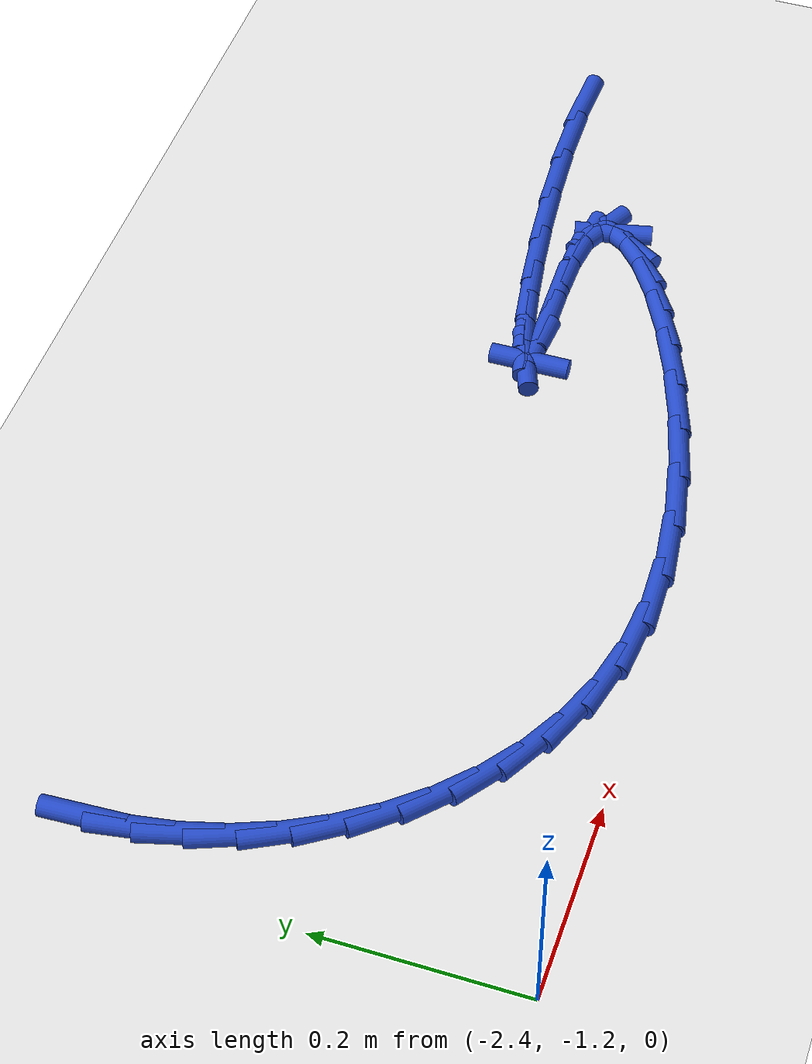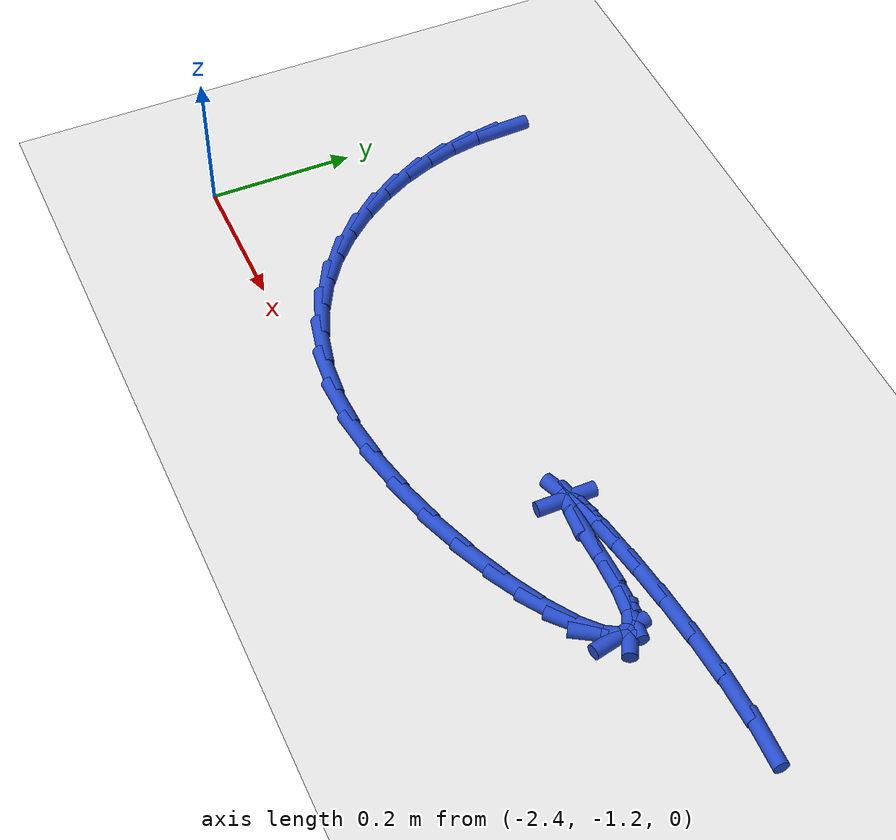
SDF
<sdf version="1.6">
 <world name="default">
  <model name="ground_plane">
   <static>1</static>
   <link name="link">
    <collision name="collision">
     <geometry><plane><normal>0 0 1</normal><size>100 100</size></plane></geometry>
     <surface><friction><ode><mu>100</mu><mu2>50</mu2></ode></friction></surface>
    </collision>
    <visual name="visual">
     <cast_shadows>0</cast_shadows>
     <geometry><plane><normal>0 0 1</normal><size>100 100</size></plane></geometry>
     <material>
      <script><uri>file://media/materials/scripts/gazebo.material</uri><name>Gazebo/WhiteGlow</name></script>
     </material>
    </visual>
   </link>
  </model>
  <model name="line">
   <link name="link_140">
    <pose>-2.354982550051445 -0.7819598261281329 0.01 0 1.57 -1.5226373907686408</pose>
    <collision name="collision">
     <geometry><cylinder><radius>0.01</radius><length>0.08</length></cylinder></geometry>
    </collision>
    <visual name="visual">
     <material>
      <script><name>Gazebo/Blue</name><uri>file://media/materials/scripts/gazebo.material</uri></script>
     </material>
     <geometry><cylinder><radius>0.01</radius><length>0.08</length></cylinder></geometry>
    </visual>
   </link>
   <link name="link_141">
    <pose>-2.352985949779934 -0.8233863325457929 0.01 0 1.57 -1.4061057183950574</pose>
    <collision name="collision">
     <geometry><cylinder><radius>0.01</radius><length>0.08</length></cylinder></geometry>
    </collision>
    <visual name="visual">
     <material>
      <script><name>Gazebo/Blue</name><uri>file://media/materials/scripts/gazebo.material</uri></script>
     </material>
     <geometry><cylinder><radius>0.01</radius><length>0.08</length></cylinder></geometry>
    </visual>
   </link>
   <link name="link_142">
    <pose>-2.345979042490689 -0.8655468605257998 0.01 0 1.57 -1.2954565174454702</pose>
    <collision name="collision">
     <geometry><cylinder><radius>0.01</radius><length>0.08</length></cylinder></geometry>
    </collision>
    <visual name="visual">
     <material>
      <script><name>Gazebo/Blue</name><uri>file://media/materials/scripts/gazebo.material</uri></script>
     </material>
     <geometry><cylinder><radius>0.01</radius><length>0.08</length></cylinder></geometry>
    </visual>
   </link>
   <link name="link_143">
    <pose>-2.3340541043550163 -0.9077567132680743 0.01 0 1.57 -1.1877855295326203</pose>
    <collision name="collision">
     <geometry><cylinder><radius>0.01</radius><length>0.08</length></cylinder></geometry>
    </collision>
    <visual name="visual">
     <material>
      <script><name>Gazebo/Blue</name><uri>file://media/materials/scripts/gazebo.material</uri></script>
     </material>
     <geometry><cylinder><radius>0.01</radius><length>0.08</length></cylinder></geometry>
    </visual>
   </link>
   <link name="link_144">
    <pose>-2.317303411544225 -0.9493311939725375 0.01 0 1.57 -1.0805460034518333</pose>
    <collision name="collision">
     <geometry><cylinder><radius>0.01</radius><length>0.08</length></cylinder></geometry>
    </collision>
    <visual name="visual">
     <material>
      <script><name>Gazebo/Blue</name><uri>file://media/materials/scripts/gazebo.material</uri></script>
     </material>
     <geometry><cylinder><radius>0.01</radius><length>0.08</length></cylinder></geometry>
    </visual>
   </link>
   <link name="link_145">
    <pose>-2.2958192402296227 -0.9895856058391107 0.01 0 1.57 -0.9715556813195505</pose>
    <collision name="collision">
     <geometry><cylinder><radius>0.01</radius><length>0.08</length></cylinder></geometry>
    </collision>
    <visual name="visual">
     <material>
      <script><name>Gazebo/Blue</name><uri>file://media/materials/scripts/gazebo.material</uri></script>
     </material>
     <geometry><cylinder><radius>0.01</radius><length>0.08</length></cylinder></geometry>
    </visual>
   </link>
   <link name="link_146">
    <pose>-2.2696938665825193 -1.0278352520677152 0.01 0 1.57 -0.8590312676838973</pose>
    <collision name="collision">
     <geometry><cylinder><radius>0.01</radius><length>0.08</length></cylinder></geometry>
    </collision>
    <visual name="visual">
     <material>
      <script><name>Gazebo/Blue</name><uri>file://media/materials/scripts/gazebo.material</uri></script>
     </material>
     <geometry><cylinder><radius>0.01</radius><length>0.08</length></cylinder></geometry>
    </visual>
   </link>
   <link name="link_147">
    <pose>-2.2390195667742203 -1.0633954358582722 0.01 0 1.57 -0.741678897190574</pose>
    <collision name="collision">
     <geometry><cylinder><radius>0.01</radius><length>0.08</length></cylinder></geometry>
    </collision>
    <visual name="visual">
     <material>
      <script><name>Gazebo/Blue</name><uri>file://media/materials/scripts/gazebo.material</uri></script>
     </material>
     <geometry><cylinder><radius>0.01</radius><length>0.08</length></cylinder></geometry>
    </visual>
   </link>
   <link name="link_148">
    <pose>-2.2038886169760374 -1.0955814604107015 0.01 0 1.57 -0.6188435072530488</pose>
    <collision name="collision">
     <geometry><cylinder><radius>0.01</radius><length>0.08</length></cylinder></geometry>
    </collision>
    <visual name="visual">
     <material>
      <script><name>Gazebo/Blue</name><uri>file://media/materials/scripts/gazebo.material</uri></script>
     </material>
     <geometry><cylinder><radius>0.01</radius><length>0.08</length></cylinder></geometry>
    </visual>
   </link>
   <link name="link_149">
    <pose>-2.1643932933592778 -1.1237086289249252 0.01 0 1.57 -0.4906862016892101</pose>
    <collision name="collision">
     <geometry><cylinder><radius>0.01</radius><length>0.08</length></cylinder></geometry>
    </collision>
    <visual name="visual">
     <material>
      <script><name>Gazebo/Blue</name><uri>file://media/materials/scripts/gazebo.material</uri></script>
     </material>
     <geometry><cylinder><radius>0.01</radius><length>0.08</length></cylinder></geometry>
    </visual>
   </link>
   <link name="link_150">
    <pose>-2.1206258720952498 -1.1470922446008642 0.01 0 1.57 -0.35831621235713773</pose>
    <collision name="collision">
     <geometry><cylinder><radius>0.01</radius><length>0.08</length></cylinder></geometry>
    </collision>
    <visual name="visual">
     <material>
      <script><name>Gazebo/Blue</name><uri>file://media/materials/scripts/gazebo.material</uri></script>
     </material>
     <geometry><cylinder><radius>0.01</radius><length>0.08</length></cylinder></geometry>
    </visual>
   </link>
   <link name="link_151">
    <pose>-2.072678629355261 -1.1650476106384395 0.01 0 1.57 -0.22377502114139616</pose>
    <collision name="collision">
     <geometry><cylinder><radius>0.01</radius><length>0.08</length></cylinder></geometry>
    </collision>
    <visual name="visual">
     <material>
      <script><name>Gazebo/Blue</name><uri>file://media/materials/scripts/gazebo.material</uri></script>
     </material>
     <geometry><cylinder><radius>0.01</radius><length>0.08</length></cylinder></geometry>
    </visual>
   </link>
   <link name="link_152">
    <pose>-2.0206438413106214 -1.1768900302375727 0.01 0 1.57 -0.08981461442549585</pose>
    <collision name="collision">
     <geometry><cylinder><radius>0.01</radius><length>0.08</length></cylinder></geometry>
    </collision>
    <visual name="visual">
     <material>
      <script><name>Gazebo/Blue</name><uri>file://media/materials/scripts/gazebo.material</uri></script>
     </material>
     <geometry><cylinder><radius>0.01</radius><length>0.08</length></cylinder></geometry>
    </visual>
   </link>
   <link name="link_153">
    <pose>-1.9646147782069314 -1.181935833841198 0.01 0 1.57 0.03340587510251744</pose>
    <collision name="collision">
     <geometry><cylinder><radius>0.01</radius><length>0.08</length></cylinder></geometry>
    </collision>
    <visual name="visual">
     <material>
      <script><name>Gazebo/Blue</name><uri>file://media/materials/scripts/gazebo.material</uri></script>
     </material>
     <geometry><cylinder><radius>0.01</radius><length>0.08</length></cylinder></geometry>
    </visual>
   </link>
   <link name="link_154">
    <pose>-1.9051164532173606 -1.1799475005442568 0.01 0 1.57 0.13158917443008</pose>
    <collision name="collision">
     <geometry><cylinder><radius>0.01</radius><length>0.08</length></cylinder></geometry>
    </collision>
    <visual name="visual">
     <material>
      <script><name>Gazebo/Blue</name><uri>file://media/materials/scripts/gazebo.material</uri></script>
     </material>
     <geometry><cylinder><radius>0.01</radius><length>0.08</length></cylinder></geometry>
    </visual>
   </link>
   <link name="link_155">
    <pose>-1.8437787112959312 -1.1718292055257444 0.01 0 1.57 0.2112907287834334</pose>
    <collision name="collision">
     <geometry><cylinder><radius>0.01</radius><length>0.08</length></cylinder></geometry>
    </collision>
    <visual name="visual">
     <material>
      <script><name>Gazebo/Blue</name><uri>file://media/materials/scripts/gazebo.material</uri></script>
     </material>
     <geometry><cylinder><radius>0.01</radius><length>0.08</length></cylinder></geometry>
    </visual>
   </link>
   <link name="link_156">
    <pose>-1.7824056168991735 -1.1586651565517176 0.01 0 1.57 0.2797845488073713</pose>
    <collision name="collision">
     <geometry><cylinder><radius>0.01</radius><length>0.08</length></cylinder></geometry>
    </collision>
    <visual name="visual">
     <material>
      <script><name>Gazebo/Blue</name><uri>file://media/materials/scripts/gazebo.material</uri></script>
     </material>
     <geometry><cylinder><radius>0.01</radius><length>0.08</length></cylinder></geometry>
    </visual>
   </link>
   <link name="link_157">
    <pose>-1.722801234483609 -1.1415395613882298 0.01 0 1.57 0.3428917014854139</pose>
    <collision name="collision">
     <geometry><cylinder><radius>0.01</radius><length>0.08</length></cylinder></geometry>
    </collision>
    <visual name="visual">
     <material>
      <script><name>Gazebo/Blue</name><uri>file://media/materials/scripts/gazebo.material</uri></script>
     </material>
     <geometry><cylinder><radius>0.01</radius><length>0.08</length></cylinder></geometry>
    </visual>
   </link>
   <link name="link_158">
    <pose>-1.666769628505765 -1.121536627801337 0.01 0 1.57 0.40633987017612083</pose>
    <collision name="collision">
     <geometry><cylinder><radius>0.01</radius><length>0.08</length></cylinder></geometry>
    </collision>
    <visual name="visual">
     <material>
      <script><name>Gazebo/Blue</name><uri>file://media/materials/scripts/gazebo.material</uri></script>
     </material>
     <geometry><cylinder><radius>0.01</radius><length>0.08</length></cylinder></geometry>
    </visual>
   </link>
   <link name="link_159">
    <pose>-1.616114863422166 -1.0997405635570943 0.01 0 1.57 0.47768119248240937</pose>
    <collision name="collision">
     <geometry><cylinder><radius>0.01</radius><length>0.08</length></cylinder></geometry>
    </collision>
    <visual name="visual">
     <material>
      <script><name>Gazebo/Blue</name><uri>file://media/materials/scripts/gazebo.material</uri></script>
     </material>
     <geometry><cylinder><radius>0.01</radius><length>0.08</length></cylinder></geometry>
    </visual>
   </link>
   <link name="link_160">
    <pose>-1.5726410036893386 -1.0772355764215562 0.01 0 1.57 0.5704809293256345</pose>
    <collision name="collision">
     <geometry><cylinder><radius>0.01</radius><length>0.08</length></cylinder></geometry>
    </collision>
    <visual name="visual">
     <material>
      <script><name>Gazebo/Blue</name><uri>file://media/materials/scripts/gazebo.material</uri></script>
     </material>
     <geometry><cylinder><radius>0.01</radius><length>0.08</length></cylinder></geometry>
    </visual>
   </link>
   <link name="link_161">
    <pose>-1.5381521137638066 -1.0551058741607775 0.01 0 1.57 0.7172226775149546</pose>
    <collision name="collision">
     <geometry><cylinder><radius>0.01</radius><length>0.08</length></cylinder></geometry>
    </collision>
    <visual name="visual">
     <material>
      <script><name>Gazebo/Blue</name><uri>file://media/materials/scripts/gazebo.material</uri></script>
     </material>
     <geometry><cylinder><radius>0.01</radius><length>0.08</length></cylinder></geometry>
    </visual>
   </link>
   <link name="link_162">
    <pose>-1.5144522581020978 -1.0344356645408141 0.01 0 1.57 1.0210650276110258</pose>
    <collision name="collision">
     <geometry><cylinder><radius>0.01</radius><length>0.08</length></cylinder></geometry>
    </collision>
    <visual name="visual">
     <material>
      <script><name>Gazebo/Blue</name><uri>file://media/materials/scripts/gazebo.material</uri></script>
     </material>
     <geometry><cylinder><radius>0.01</radius><length>0.08</length></cylinder></geometry>
    </visual>
   </link>
   <link name="link_163">
    <pose>-1.5033455011607368 -1.0163091553277213 0.01 0 1.57 -1.3476299863040104</pose>
    <collision name="collision">
     <geometry><cylinder><radius>0.01</radius><length>0.08</length></cylinder></geometry>
    </collision>
    <visual name="visual">
     <material>
      <script><name>Gazebo/Blue</name><uri>file://media/materials/scripts/gazebo.material</uri></script>
     </material>
     <geometry><cylinder><radius>0.01</radius><length>0.08</length></cylinder></geometry>
    </visual>
   </link>
   <link name="link_164">
    <pose>-1.5066359073962494 -1.0018105542875533 0.01 0 1.57 -0.4653153693095765</pose>
    <collision name="collision">
     <geometry><cylinder><radius>0.01</radius><length>0.08</length></cylinder></geometry>
    </collision>
    <visual name="visual">
     <material>
      <script><name>Gazebo/Blue</name><uri>file://media/materials/scripts/gazebo.material</uri></script>
     </material>
     <geometry><cylinder><radius>0.01</radius><length>0.08</length></cylinder></geometry>
    </visual>
   </link>
   <link name="link_165">
    <pose>-1.5261275412651607 -0.9920240691863658 0.01 0 1.57 -0.12331081072778365</pose>
    <collision name="collision">
     <geometry><cylinder><radius>0.01</radius><length>0.08</length></cylinder></geometry>
    </collision>
    <visual name="visual">
     <material>
      <script><name>Gazebo/Blue</name><uri>file://media/materials/scripts/gazebo.material</uri></script>
     </material>
     <geometry><cylinder><radius>0.01</radius><length>0.08</length></cylinder></geometry>
    </visual>
   </link>
   <link name="link_166">
    <pose>-1.562048106305955 -0.9875720873288208 0.01 0 1.57 -0.013418256302124164</pose>
    <collision name="collision">
     <geometry><cylinder><radius>0.01</radius><length>0.08</length></cylinder></geometry>
    </collision>
    <visual name="visual">
     <material>
      <script><name>Gazebo/Blue</name><uri>file://media/materials/scripts/gazebo.material</uri></script>
     </material>
     <geometry><cylinder><radius>0.01</radius><length>0.08</length></cylinder></geometry>
    </visual>
   </link>
   <link name="link_167">
    <pose>-1.607410711611135 -0.9869633637303847 0.01 0 1.57 0.024887551912894053</pose>
    <collision name="collision">
     <geometry><cylinder><radius>0.01</radius><length>0.08</length></cylinder></geometry>
    </collision>
    <visual name="visual">
     <material>
      <script><name>Gazebo/Blue</name><uri>file://media/materials/scripts/gazebo.material</uri></script>
     </material>
     <geometry><cylinder><radius>0.01</radius><length>0.08</length></cylinder></geometry>
    </visual>
   </link>
   <link name="link_168">
    <pose>-1.6531656847984122 -0.9881023281650518 0.01 0 1.57 0.02131988600534523</pose>
    <collision name="collision">
     <geometry><cylinder><radius>0.01</radius><length>0.08</length></cylinder></geometry>
    </collision>
    <visual name="visual">
     <material>
      <script><name>Gazebo/Blue</name><uri>file://media/materials/scripts/gazebo.material</uri></script>
     </material>
     <geometry><cylinder><radius>0.01</radius><length>0.08</length></cylinder></geometry>
    </visual>
   </link>
   <link name="link_169">
    <pose>-1.6902631903356846 -0.9888933626094377 0.01 0 1.57 -0.07847987407703434</pose>
    <collision name="collision">
     <geometry><cylinder><radius>0.01</radius><length>0.08</length></cylinder></geometry>
    </collision>
    <visual name="visual">
     <material>
      <script><name>Gazebo/Blue</name><uri>file://media/materials/scripts/gazebo.material</uri></script>
     </material>
     <geometry><cylinder><radius>0.01</radius><length>0.08</length></cylinder></geometry>
    </visual>
   </link>
   <link name="link_170">
    <pose>-1.7100528634520362 -0.9873370751373429 0.01 0 1.57 -1.5565945803567598</pose>
    <collision name="collision">
     <geometry><cylinder><radius>0.01</radius><length>0.08</length></cylinder></geometry>
    </collision>
    <visual name="visual">
     <material>
      <script><name>Gazebo/Blue</name><uri>file://media/materials/scripts/gazebo.material</uri></script>
     </material>
     <geometry><cylinder><radius>0.01</radius><length>0.08</length></cylinder></geometry>
    </visual>
   </link>
   <link name="link_171">
    <pose>-1.7101153843475163 -0.9829350325840281 0.01 0 1.57 0.36519082456772495</pose>
    <collision name="collision">
     <geometry><cylinder><radius>0.01</radius><length>0.08</length></cylinder></geometry>
    </collision>
    <visual name="visual">
     <material>
      <script><name>Gazebo/Blue</name><uri>file://media/materials/scripts/gazebo.material</uri></script>
     </material>
     <geometry><cylinder><radius>0.01</radius><length>0.08</length></cylinder></geometry>
    </visual>
   </link>
   <link name="link_172">
    <pose>-1.6929613049770738 -0.9763763287947267 0.01 0 1.57 0.24683099124791377</pose>
    <collision name="collision">
     <geometry><cylinder><radius>0.01</radius><length>0.08</length></cylinder></geometry>
    </collision>
    <visual name="visual">
     <material>
      <script><name>Gazebo/Blue</name><uri>file://media/materials/scripts/gazebo.material</uri></script>
     </material>
     <geometry><cylinder><radius>0.01</radius><length>0.08</length></cylinder></geometry>
    </visual>
   </link>
   <link name="link_173">
    <pose>-1.6612359295286958 -0.9683825172656212 0.01 0 1.57 0.1968909055311509</pose>
    <collision name="collision">
     <geometry><cylinder><radius>0.01</radius><length>0.08</length></cylinder></geometry>
    </collision>
    <visual name="visual">
     <material>
      <script><name>Gazebo/Blue</name><uri>file://media/materials/scripts/gazebo.material</uri></script>
     </material>
     <geometry><cylinder><radius>0.01</radius><length>0.08</length></cylinder></geometry>
    </visual>
   </link>
   <link name="link_174">
    <pose>-1.6175845621903688 -0.9596751514928946 0.01 0 1.57 0.16289347239687765</pose>
    <collision name="collision">
     <geometry><cylinder><radius>0.01</radius><length>0.08</length></cylinder></geometry>
    </collision>
    <visual name="visual">
     <material>
      <script><name>Gazebo/Blue</name><uri>file://media/materials/scripts/gazebo.material</uri></script>
     </material>
     <geometry><cylinder><radius>0.01</radius><length>0.08</length></cylinder></geometry>
    </visual>
   </link>
   <link name="link_175">
    <pose>-1.5646525071500796 -0.9509757849727292 0.01 0 1.57 0.1330049149871158</pose>
    <collision name="collision">
     <geometry><cylinder><radius>0.01</radius><length>0.08</length></cylinder></geometry>
    </collision>
    <visual name="visual">
     <material>
      <script><name>Gazebo/Blue</name><uri>file://media/materials/scripts/gazebo.material</uri></script>
     </material>
     <geometry><cylinder><radius>0.01</radius><length>0.08</length></cylinder></geometry>
    </visual>
   </link>
   <link name="link_176">
    <pose>-1.5050850685958148 -0.9430059712013079 0.01 0 1.57 0.10220652727993193</pose>
    <collision name="collision">
     <geometry><cylinder><radius>0.01</radius><length>0.08</length></cylinder></geometry>
    </collision>
    <visual name="visual">
     <material>
      <script><name>Gazebo/Blue</name><uri>file://media/materials/scripts/gazebo.material</uri></script>
     </material>
     <geometry><cylinder><radius>0.01</radius><length>0.08</length></cylinder></geometry>
    </visual>
   </link>
   <link name="link_177">
    <pose>-1.441527550715559 -0.9364872636748128 0.01 0 1.57 0.06686311164619659</pose>
    <collision name="collision">
     <geometry><cylinder><radius>0.01</radius><length>0.08</length></cylinder></geometry>
    </collision>
    <visual name="visual">
     <material>
      <script><name>Gazebo/Blue</name><uri>file://media/materials/scripts/gazebo.material</uri></script>
     </material>
     <geometry><cylinder><radius>0.01</radius><length>0.08</length></cylinder></geometry>
    </visual>
   </link>
   <link name="link_178">
    <pose>-1.376625257697303 -0.9321412158894276 0.01 0 1.57 0.02282299054731413</pose>
    <collision name="collision">
     <geometry><cylinder><radius>0.01</radius><length>0.08</length></cylinder></geometry>
    </collision>
    <visual name="visual">
     <material>
      <script><name>Gazebo/Blue</name><uri>file://media/materials/scripts/gazebo.material</uri></script>
     </material>
     <geometry><cylinder><radius>0.01</radius><length>0.08</length></cylinder></geometry>
    </visual>
   </link>
   <link name="link_179">
    <pose>-1.3130234937290315 -0.9306893813413339 0.01 0 1.57 -0.036257649965547215</pose>
    <collision name="collision">
     <geometry><cylinder><radius>0.01</radius><length>0.08</length></cylinder></geometry>
    </collision>
    <visual name="visual">
     <material>
      <script><name>Gazebo/Blue</name><uri>file://media/materials/scripts/gazebo.material</uri></script>
     </material>
     <geometry><cylinder><radius>0.01</radius><length>0.08</length></cylinder></geometry>
    </visual>
   </link>
  </model>
 </world>
</sdf>
